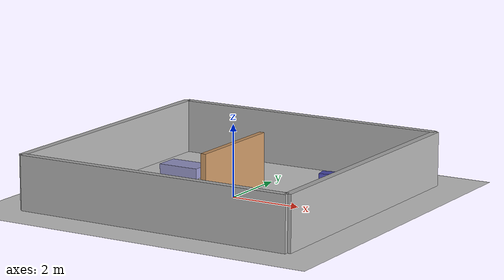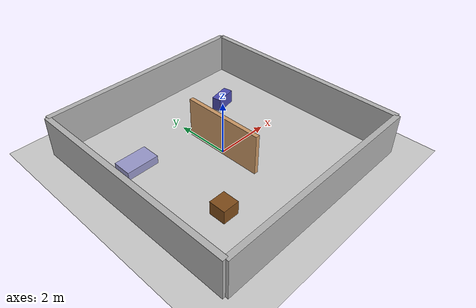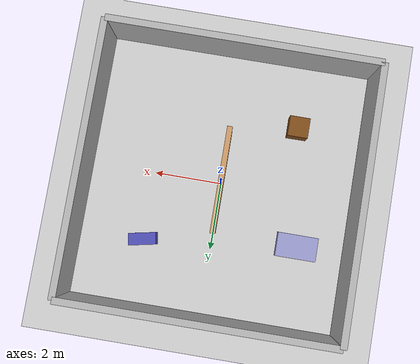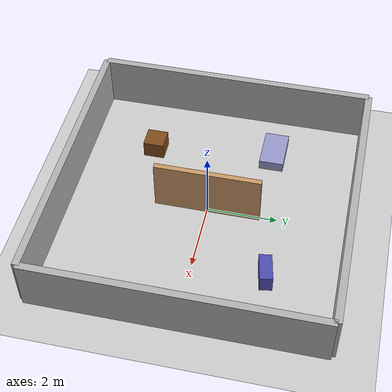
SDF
<?xml version="1.0" ?>
<sdf version="1.8">
  <world name="multi_room">
    <gravity>0 0 -9.81</gravity>

    <physics name="1ms" type="dart">
      <max_step_size>0.001</max_step_size>
      <real_time_factor>1.0</real_time_factor>
      <dart>
        <collision_detector>bullet</collision_detector>
      </dart>
    </physics>

    <plugin
      filename="gz-sim-physics-system"
      name="gz::sim::systems::Physics">
    </plugin>

    <plugin filename="gz-sim-imu-system" name="gz::sim::systems::Imu"/>
    <plugin
  filename="gz-sim-sensors-system"
  name="gz::sim::systems::Sensors">
  <render_engine>ogre2</render_engine>
</plugin>

    <plugin
      filename="gz-sim-contact-system"
      name="gz::sim::systems::Contact">
    </plugin>
    <plugin
      filename="gz-sim-user-commands-system"
      name="gz::sim::systems::UserCommands">
    </plugin>
    <plugin
      filename="gz-sim-scene-broadcaster-system"
      name="gz::sim::systems::SceneBroadcaster">
    </plugin>
    <scene>
      <ambient>0.4 0.4 0.4</ambient>
      <background>0.7 0.7 0.7</background>
    </scene>
    <light type="directional" name="sun">
      <pose>0 0 10 0 0 0</pose>
      <diffuse>0.8 0.8 0.8 1</diffuse>
      <specular>0.2 0.2 0.2 1</specular>
      <direction>-0.5 0.1 -1</direction>
    </light>

    <model name="ground_plane">
      <static>true</static>
      <link name="link">
        <collision name="collision">
          <geometry>
            <plane>
              <normal>0 0 1</normal>
            </plane>
          </geometry>
        </collision>
        <visual name="visual">
          <geometry>
            <plane>
              <normal>0 0 1</normal>
              <size>100 100</size>
            </plane>
          </geometry>
          <material>
            <ambient>0.8 0.8 0.8 1</ambient>
            <diffuse>0.8 0.8 0.8 1</diffuse>
          </material>
        </visual>
      </link>
    </model>

    <model name="outer_wall_back">
      <static>true</static>
      <pose>4.0 0 0.75 0 0 0</pose>
      <link name="link">
        <collision name="collision"><geometry><box><size>0.2 8.0 1.5</size></box></geometry></collision>
        <visual name="visual"><geometry><box><size>0.2 8.0 1.5</size></box></geometry>
          <material><ambient>0.7 0.7 0.7</ambient><diffuse>0.7 0.7 0.7</diffuse></material>
        </visual>
      </link>
    </model>
    <model name="outer_wall_front">
      <static>true</static>
      <pose>-4.0 0 0.75 0 0 0</pose>
      <link name="link">
        <collision name="collision"><geometry><box><size>0.2 8.0 1.5</size></box></geometry></collision>
        <visual name="visual"><geometry><box><size>0.2 8.0 1.5</size></box></geometry>
          <material><ambient>0.7 0.7 0.7</ambient><diffuse>0.7 0.7 0.7</diffuse></material>
        </visual>
      </link>
    </model>
    <model name="outer_wall_left">
      <static>true</static>
      <pose>0 4.0 0.75 0 0 1.5708</pose>
      <link name="link">
        <collision name="collision"><geometry><box><size>0.2 8.0 1.5</size></box></geometry></collision>
        <visual name="visual"><geometry><box><size>0.2 8.0 1.5</size></box></geometry>
          <material><ambient>0.7 0.7 0.7</ambient><diffuse>0.7 0.7 0.7</diffuse></material>
        </visual>
      </link>
    </model>
    <model name="outer_wall_right">
      <static>true</static>
      <pose>0 -4.0 0.75 0 0 1.5708</pose>
      <link name="link">
        <collision name="collision"><geometry><box><size>0.2 8.0 1.5</size></box></geometry></collision>
        <visual name="visual"><geometry><box><size>0.2 8.0 1.5</size></box></geometry>
          <material><ambient>0.7 0.7 0.7</ambient><diffuse>0.7 0.7 0.7</diffuse></material>
        </visual>
      </link>
    </model>

    <model name="inner_wall">
      <static>true</static>
      <pose>0 0 0.75 0 0 0</pose>
      <link name="link">
        <collision name="collision"><geometry><box><size>0.15 3.0 1.5</size></box></geometry></collision>
        <visual name="visual"><geometry><box><size>0.15 3.0 1.5</size></box></geometry>
          <material><ambient>0.8 0.6 0.4</ambient><diffuse>0.8 0.6 0.4</diffuse></material>
        </visual>
      </link>
    </model>

    <model name="sofa">
      <static>true</static>
      <pose>2.0 2.0 0.25 0 0 0.2</pose>
      <link name="link">
        <collision name="collision"><geometry><box><size>0.8 0.35 0.5</size></box></geometry></collision>
        <visual name="visual"><geometry><box><size>0.8 0.35 0.5</size></box></geometry>
          <material><ambient>0.3 0.3 0.7</ambient><diffuse>0.3 0.3 0.7</diffuse></material>
        </visual>
      </link>
    </model>

    <model name="table">
      <static>true</static>
      <pose>-2.0 -2.0 0.25 0 0 0</pose>
      <link name="link">
        <collision name="collision"><geometry><box><size>0.6 0.6 0.5</size></box></geometry></collision>
        <visual name="visual"><geometry><box><size>0.6 0.6 0.5</size></box></geometry>
          <material><ambient>0.5 0.3 0.1</ambient><diffuse>0.5 0.3 0.1</diffuse></material>
        </visual>
      </link>
    </model>

    <model name="bed">
      <static>true</static>
      <pose>-2.5 1.5 0.15 0 0 0</pose>
      <link name="link">
        <collision name="collision"><geometry><box><size>1.2 0.7 0.3</size></box></geometry></collision>
        <visual name="visual"><geometry><box><size>1.2 0.7 0.3</size></box></geometry>
          <material><ambient>0.6 0.6 0.8</ambient><diffuse>0.6 0.6 0.8</diffuse></material>
        </visual>
      </link>
    </model>
  </world>
</sdf>
